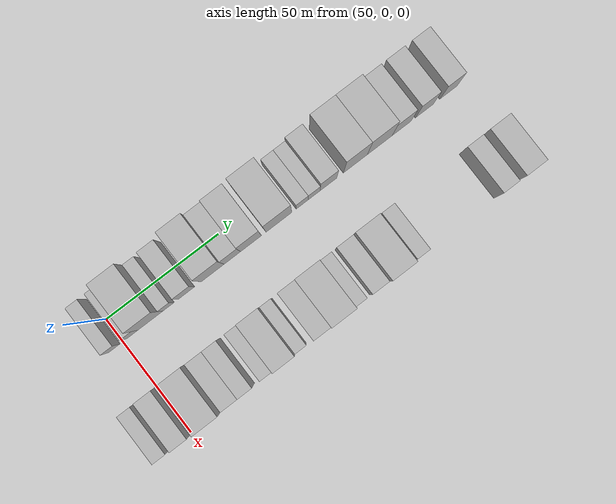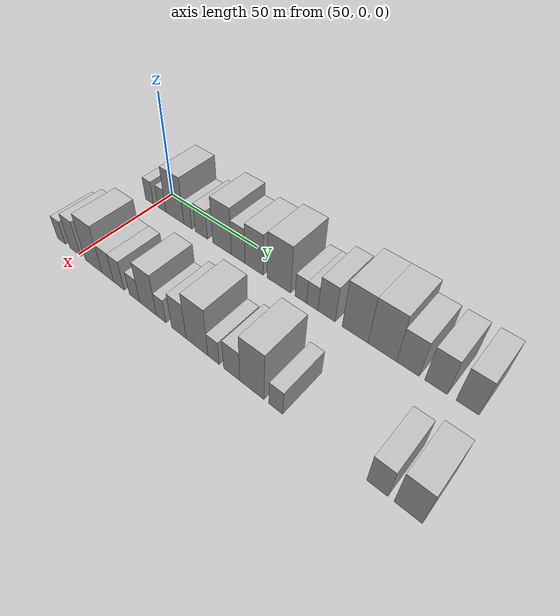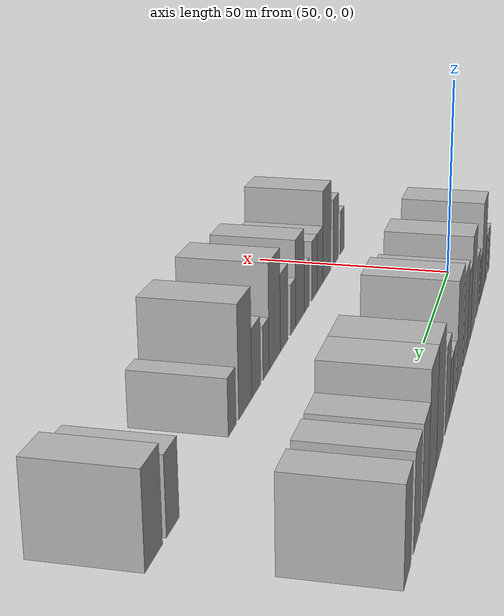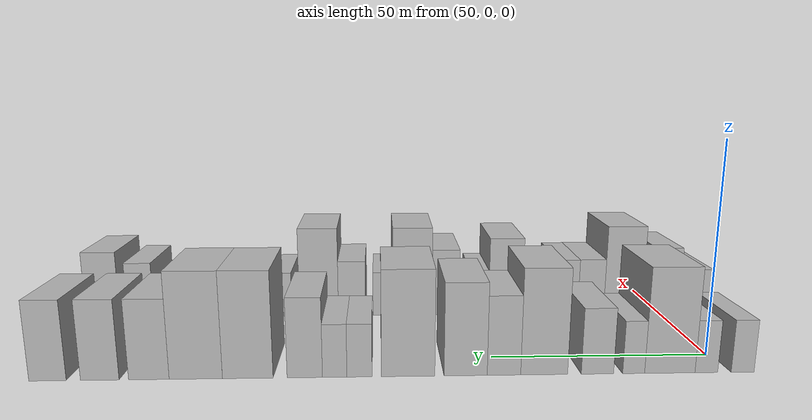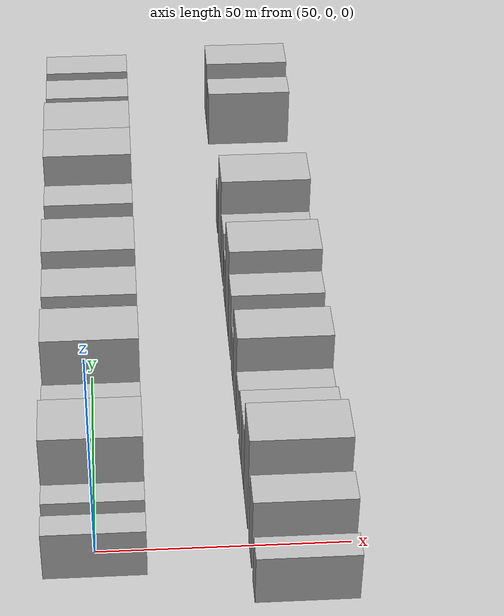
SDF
<sdf version="1.6">
 <world name="default">
  <model name="building_35">
   <static>1</static>
   <pose>50.0000 -3.7508 0 0.000000 0.000000 0.000000</pose>
   <link name="link">
    <pose>0 0 6.00 0 0 0</pose>
    <collision name="collision"><geometry><box><size>20.0000 5.0844 12.0000</size></box></geometry></collision>
    <visual name="visual">
     <cast_shadows>0</cast_shadows>
     <geometry><box><size>20.0000 5.0844 12.0000</size></box></geometry>
     <material>
      <script>
       <uri>model://HANNAS_wall/materials/scripts</uri>
       <uri>model://HANNAS_wall/materials/textures</uri>
       <name>vrc/HANNAS_wall</name>
      </script>
     </material>
    </visual>
   </link>
  </model>
  <model name="building_36">
   <static>1</static>
   <pose>50.0000 4.3104 0 0.000000 0.000000 0.000000</pose>
   <link name="link">
    <pose>0 0 6.00 0 0 0</pose>
    <collision name="collision"><geometry><box><size>20.0000 5.0379 12.0000</size></box></geometry></collision>
    <visual name="visual">
     <cast_shadows>0</cast_shadows>
     <geometry><box><size>20.0000 5.0379 12.0000</size></box></geometry>
     <material>
      <script>
       <uri>model://HANNAS_wall/materials/scripts</uri>
       <uri>model://HANNAS_wall/materials/textures</uri>
       <name>vrc/HANNAS_wall</name>
      </script>
     </material>
    </visual>
   </link>
  </model>
  <model name="building_37">
   <static>1</static>
   <pose>50.0000 12.4003 0 0.000000 0.000000 0.000000</pose>
   <link name="link">
    <pose>0 0 12.00 0 0 0</pose>
    <collision name="collision"><geometry><box><size>20.0000 11.1420 24.0000</size></box></geometry></collision>
    <visual name="visual">
     <cast_shadows>0</cast_shadows>
     <geometry><box><size>20.0000 11.1420 24.0000</size></box></geometry>
     <material>
      <script>
       <uri>model://HANNAS_wall/materials/scripts</uri>
       <uri>model://HANNAS_wall/materials/textures</uri>
       <name>vrc/HANNAS_wall</name>
      </script>
     </material>
    </visual>
   </link>
  </model>
  <model name="building_38">
   <static>1</static>
   <pose>50.0000 20.3887 0 0.000000 0.000000 0.000000</pose>
   <link name="link">
    <pose>0 0 6.00 0 0 0</pose>
    <collision name="collision"><geometry><box><size>20.0000 4.8348 12.0000</size></box></geometry></collision>
    <visual name="visual">
     <cast_shadows>0</cast_shadows>
     <geometry><box><size>20.0000 4.8348 12.0000</size></box></geometry>
     <material>
      <script>
       <uri>model://HANNAS_wall/materials/scripts</uri>
       <uri>model://HANNAS_wall/materials/textures</uri>
       <name>vrc/HANNAS_wall</name>
      </script>
     </material>
    </visual>
   </link>
  </model>
  <model name="building_39">
   <static>1</static>
   <pose>50.0000 28.3555 0 0.000000 0.000000 0.000000</pose>
   <link name="link">
    <pose>0 0 7.50 0 0 0</pose>
    <collision name="collision"><geometry><box><size>20.0000 7.0989 15.0000</size></box></geometry></collision>
    <visual name="visual">
     <cast_shadows>0</cast_shadows>
     <geometry><box><size>20.0000 7.0989 15.0000</size></box></geometry>
     <material>
      <script>
       <uri>model://HANNAS_wall/materials/scripts</uri>
       <uri>model://HANNAS_wall/materials/textures</uri>
       <name>vrc/HANNAS_wall</name>
      </script>
     </material>
    </visual>
   </link>
  </model>
  <model name="building_40">
   <static>1</static>
   <pose>50.0000 40.0406 0 0.000000 0.000000 0.000000</pose>
   <link name="link">
    <pose>0 0 12.00 0 0 0</pose>
    <collision name="collision"><geometry><box><size>20.0000 10.2713 24.0000</size></box></geometry></collision>
    <visual name="visual">
     <cast_shadows>0</cast_shadows>
     <geometry><box><size>20.0000 10.2713 24.0000</size></box></geometry>
     <material>
      <script>
       <uri>model://HANNAS_wall/materials/scripts</uri>
       <uri>model://HANNAS_wall/materials/textures</uri>
       <name>vrc/HANNAS_wall</name>
      </script>
     </material>
    </visual>
   </link>
  </model>
  <model name="building_41">
   <static>1</static>
   <pose>50.0000 48.8296 0 0.000000 0.000000 0.000000</pose>
   <link name="link">
    <pose>0 0 9.00 0 0 0</pose>
    <collision name="collision"><geometry><box><size>20.0000 7.3065 18.0000</size></box></geometry></collision>
    <visual name="visual">
     <cast_shadows>0</cast_shadows>
     <geometry><box><size>20.0000 7.3065 18.0000</size></box></geometry>
     <material>
      <script>
       <uri>model://HANNAS_wall/materials/scripts</uri>
       <uri>model://HANNAS_wall/materials/textures</uri>
       <name>vrc/HANNAS_wall</name>
      </script>
     </material>
    </visual>
   </link>
  </model>
  <model name="building_42">
   <static>1</static>
   <pose>50.0000 57.1725 0 0.000000 0.000000 0.000000</pose>
   <link name="link">
    <pose>0 0 10.50 0 0 0</pose>
    <collision name="collision"><geometry><box><size>20.0000 9.3794 21.0000</size></box></geometry></collision>
    <visual name="visual">
     <cast_shadows>0</cast_shadows>
     <geometry><box><size>20.0000 9.3794 21.0000</size></box></geometry>
     <material>
      <script>
       <uri>model://HANNAS_wall/materials/scripts</uri>
       <uri>model://HANNAS_wall/materials/textures</uri>
       <name>vrc/HANNAS_wall</name>
      </script>
     </material>
    </visual>
   </link>
  </model>
  <model name="building_43">
   <static>1</static>
   <pose>50.0000 69.6522 0 0.000000 0.000000 0.000000</pose>
   <link name="link">
    <pose>0 0 12.00 0 0 0</pose>
    <collision name="collision"><geometry><box><size>20.0000 11.5799 24.0000</size></box></geometry></collision>
    <visual name="visual">
     <cast_shadows>0</cast_shadows>
     <geometry><box><size>20.0000 11.5799 24.0000</size></box></geometry>
     <material>
      <script>
       <uri>model://HANNAS_wall/materials/scripts</uri>
       <uri>model://HANNAS_wall/materials/textures</uri>
       <name>vrc/HANNAS_wall</name>
      </script>
     </material>
    </visual>
   </link>
  </model>
  <model name="building_44">
   <static>1</static>
   <pose>50.0000 80.1559 0 0.000000 0.000000 0.000000</pose>
   <link name="link">
    <pose>0 0 6.00 0 0 0</pose>
    <collision name="collision"><geometry><box><size>20.0000 5.4277 12.0000</size></box></geometry></collision>
    <visual name="visual">
     <cast_shadows>0</cast_shadows>
     <geometry><box><size>20.0000 5.4277 12.0000</size></box></geometry>
     <material>
      <script>
       <uri>model://HANNAS_wall/materials/scripts</uri>
       <uri>model://HANNAS_wall/materials/textures</uri>
       <name>vrc/HANNAS_wall</name>
      </script>
     </material>
    </visual>
   </link>
  </model>
  <model name="building_45">
   <static>1</static>
   <pose>50.0000 85.5039 0 0.000000 0.000000 0.000000</pose>
   <link name="link">
    <pose>0 0 6.00 0 0 0</pose>
    <collision name="collision"><geometry><box><size>20.0000 5.2683 12.0000</size></box></geometry></collision>
    <visual name="visual">
     <cast_shadows>0</cast_shadows>
     <geometry><box><size>20.0000 5.2683 12.0000</size></box></geometry>
     <material>
      <script>
       <uri>model://HANNAS_wall/materials/scripts</uri>
       <uri>model://HANNAS_wall/materials/textures</uri>
       <name>vrc/HANNAS_wall</name>
      </script>
     </material>
    </visual>
   </link>
  </model>
  <model name="building_46">
   <static>1</static>
   <pose>50.0000 91.9332 0 0.000000 0.000000 0.000000</pose>
   <link name="link">
    <pose>0 0 9.00 0 0 0</pose>
    <collision name="collision"><geometry><box><size>20.0000 7.5904 18.0000</size></box></geometry></collision>
    <visual name="visual">
     <cast_shadows>0</cast_shadows>
     <geometry><box><size>20.0000 7.5904 18.0000</size></box></geometry>
     <material>
      <script>
       <uri>model://HANNAS_wall/materials/scripts</uri>
       <uri>model://HANNAS_wall/materials/textures</uri>
       <name>vrc/HANNAS_wall</name>
      </script>
     </material>
    </visual>
   </link>
  </model>
  <model name="building_47">
   <static>1</static>
   <pose>50.0000 104.1379 0 0.000000 0.000000 0.000000</pose>
   <link name="link">
    <pose>0 0 12.00 0 0 0</pose>
    <collision name="collision"><geometry><box><size>20.0000 10.8189 24.0000</size></box></geometry></collision>
    <visual name="visual">
     <cast_shadows>0</cast_shadows>
     <geometry><box><size>20.0000 10.8189 24.0000</size></box></geometry>
     <material>
      <script>
       <uri>model://HANNAS_wall/materials/scripts</uri>
       <uri>model://HANNAS_wall/materials/textures</uri>
       <name>vrc/HANNAS_wall</name>
      </script>
     </material>
    </visual>
   </link>
  </model>
  <model name="building_48">
   <static>1</static>
   <pose>50.0000 115.2195 0 0.000000 0.000000 0.000000</pose>
   <link name="link">
    <pose>0 0 12.00 0 0 0</pose>
    <collision name="collision"><geometry><box><size>20.0000 11.3442 24.0000</size></box></geometry></collision>
    <visual name="visual">
     <cast_shadows>0</cast_shadows>
     <geometry><box><size>20.0000 11.3442 24.0000</size></box></geometry>
     <material>
      <script>
       <uri>model://HANNAS_wall/materials/scripts</uri>
       <uri>model://HANNAS_wall/materials/textures</uri>
       <name>vrc/HANNAS_wall</name>
      </script>
     </material>
    </visual>
   </link>
  </model>
  <model name="building_49">
   <static>1</static>
   <pose>50.0000 125.1964 0 0.000000 0.000000 0.000000</pose>
   <link name="link">
    <pose>0 0 9.00 0 0 0</pose>
    <collision name="collision"><geometry><box><size>20.0000 8.6096 18.0000</size></box></geometry></collision>
    <visual name="visual">
     <cast_shadows>0</cast_shadows>
     <geometry><box><size>20.0000 8.6096 18.0000</size></box></geometry>
     <material>
      <script>
       <uri>model://HANNAS_wall/materials/scripts</uri>
       <uri>model://HANNAS_wall/materials/textures</uri>
       <name>vrc/HANNAS_wall</name>
      </script>
     </material>
    </visual>
   </link>
  </model>
  <model name="building_50">
   <static>1</static>
   <pose>50.0000 135.5839 0 0.000000 0.000000 0.000000</pose>
   <link name="link">
    <pose>0 0 9.00 0 0 0</pose>
    <collision name="collision"><geometry><box><size>20.0000 8.1655 18.0000</size></box></geometry></collision>
    <visual name="visual">
     <cast_shadows>0</cast_shadows>
     <geometry><box><size>20.0000 8.1655 18.0000</size></box></geometry>
     <material>
      <script>
       <uri>model://HANNAS_wall/materials/scripts</uri>
       <uri>model://HANNAS_wall/materials/textures</uri>
       <name>vrc/HANNAS_wall</name>
      </script>
     </material>
    </visual>
   </link>
  </model>
  <model name="building_51">
   <static>1</static>
   <pose>50.0000 146.5986 0 0.000000 0.000000 0.000000</pose>
   <link name="link">
    <pose>0 0 9.00 0 0 0</pose>
    <collision name="collision"><geometry><box><size>20.0000 7.8638 18.0000</size></box></geometry></collision>
    <visual name="visual">
     <cast_shadows>0</cast_shadows>
     <geometry><box><size>20.0000 7.8638 18.0000</size></box></geometry>
     <material>
      <script>
       <uri>model://HANNAS_wall/materials/scripts</uri>
       <uri>model://HANNAS_wall/materials/textures</uri>
       <name>vrc/HANNAS_wall</name>
      </script>
     </material>
    </visual>
   </link>
  </model>
  <model name="building_101">
   <static>1</static>
   <pose>90.0000 -11.5696 0 0.000000 0.000000 0.000000</pose>
   <link name="link">
    <pose>0 0 6.00 0 0 0</pose>
    <collision name="collision"><geometry><box><size>20.0000 5.5529 12.0000</size></box></geometry></collision>
    <visual name="visual">
     <cast_shadows>0</cast_shadows>
     <geometry><box><size>20.0000 5.5529 12.0000</size></box></geometry>
     <material>
      <script>
       <uri>model://HANNAS_wall/materials/scripts</uri>
       <uri>model://HANNAS_wall/materials/textures</uri>
       <name>vrc/HANNAS_wall</name>
      </script>
     </material>
    </visual>
   </link>
  </model>
  <model name="building_102">
   <static>1</static>
   <pose>90.0000 -2.1830 0 0.000000 0.000000 0.000000</pose>
   <link name="link">
    <pose>0 0 9.00 0 0 0</pose>
    <collision name="collision"><geometry><box><size>20.0000 7.2203 18.0000</size></box></geometry></collision>
    <visual name="visual">
     <cast_shadows>0</cast_shadows>
     <geometry><box><size>20.0000 7.2203 18.0000</size></box></geometry>
     <material>
      <script>
       <uri>model://HANNAS_wall/materials/scripts</uri>
       <uri>model://HANNAS_wall/materials/textures</uri>
       <name>vrc/HANNAS_wall</name>
      </script>
     </material>
    </visual>
   </link>
  </model>
  <model name="building_103">
   <static>1</static>
   <pose>90.0000 9.6742 0 0.000000 0.000000 0.000000</pose>
   <link name="link">
    <pose>0 0 12.00 0 0 0</pose>
    <collision name="collision"><geometry><box><size>20.0000 10.4942 24.0000</size></box></geometry></collision>
    <visual name="visual">
     <cast_shadows>0</cast_shadows>
     <geometry><box><size>20.0000 10.4942 24.0000</size></box></geometry>
     <material>
      <script>
       <uri>model://HANNAS_wall/materials/scripts</uri>
       <uri>model://HANNAS_wall/materials/textures</uri>
       <name>vrc/HANNAS_wall</name>
      </script>
     </material>
    </visual>
   </link>
  </model>
  <model name="building_104">
   <static>1</static>
   <pose>90.0000 18.4553 0 0.000000 0.000000 0.000000</pose>
   <link name="link">
    <pose>0 0 7.50 0 0 0</pose>
    <collision name="collision"><geometry><box><size>20.0000 7.0680 15.0000</size></box></geometry></collision>
    <visual name="visual">
     <cast_shadows>0</cast_shadows>
     <geometry><box><size>20.0000 7.0680 15.0000</size></box></geometry>
     <material>
      <script>
       <uri>model://HANNAS_wall/materials/scripts</uri>
       <uri>model://HANNAS_wall/materials/textures</uri>
       <name>vrc/HANNAS_wall</name>
      </script>
     </material>
    </visual>
   </link>
  </model>
  <model name="building_105">
   <static>1</static>
   <pose>90.0000 25.0851 0 0.000000 0.000000 0.000000</pose>
   <link name="link">
    <pose>0 0 7.50 0 0 0</pose>
    <collision name="collision"><geometry><box><size>20.0000 6.1916 15.0000</size></box></geometry></collision>
    <visual name="visual">
     <cast_shadows>0</cast_shadows>
     <geometry><box><size>20.0000 6.1916 15.0000</size></box></geometry>
     <material>
      <script>
       <uri>model://HANNAS_wall/materials/scripts</uri>
       <uri>model://HANNAS_wall/materials/textures</uri>
       <name>vrc/HANNAS_wall</name>
      </script>
     </material>
    </visual>
   </link>
  </model>
  <model name="building_106">
   <static>1</static>
   <pose>90.0000 34.1419 0 0.000000 0.000000 0.000000</pose>
   <link name="link">
    <pose>0 0 6.00 0 0 0</pose>
    <collision name="collision"><geometry><box><size>20.0000 5.9220 12.0000</size></box></geometry></collision>
    <visual name="visual">
     <cast_shadows>0</cast_shadows>
     <geometry><box><size>20.0000 5.9220 12.0000</size></box></geometry>
     <material>
      <script>
       <uri>model://HANNAS_wall/materials/scripts</uri>
       <uri>model://HANNAS_wall/materials/textures</uri>
       <name>vrc/HANNAS_wall</name>
      </script>
     </material>
    </visual>
   </link>
  </model>
  <model name="building_107">
   <static>1</static>
   <pose>90.0000 41.6938 0 0.000000 0.000000 0.000000</pose>
   <link name="link">
    <pose>0 0 10.50 0 0 0</pose>
    <collision name="collision"><geometry><box><size>20.0000 9.1819 21.0000</size></box></geometry></collision>
    <visual name="visual">
     <cast_shadows>0</cast_shadows>
     <geometry><box><size>20.0000 9.1819 21.0000</size></box></geometry>
     <material>
      <script>
       <uri>model://HANNAS_wall/materials/scripts</uri>
       <uri>model://HANNAS_wall/materials/textures</uri>
       <name>vrc/HANNAS_wall</name>
      </script>
     </material>
    </visual>
   </link>
  </model>
  <model name="building_108">
   <static>1</static>
   <pose>90.0000 48.7648 0 0.000000 0.000000 0.000000</pose>
   <link name="link">
    <pose>0 0 6.00 0 0 0</pose>
    <collision name="collision"><geometry><box><size>20.0000 4.9601 12.0000</size></box></geometry></collision>
    <visual name="visual">
     <cast_shadows>0</cast_shadows>
     <geometry><box><size>20.0000 4.9601 12.0000</size></box></geometry>
     <material>
      <script>
       <uri>model://HANNAS_wall/materials/scripts</uri>
       <uri>model://HANNAS_wall/materials/textures</uri>
       <name>vrc/HANNAS_wall</name>
      </script>
     </material>
    </visual>
   </link>
  </model>
  <model name="building_109">
   <static>1</static>
   <pose>90.0000 57.9348 0 0.000000 0.000000 0.000000</pose>
   <link name="link">
    <pose>0 0 9.00 0 0 0</pose>
    <collision name="collision"><geometry><box><size>20.0000 7.3800 18.0000</size></box></geometry></collision>
    <visual name="visual">
     <cast_shadows>0</cast_shadows>
     <geometry><box><size>20.0000 7.3800 18.0000</size></box></geometry>
     <material>
      <script>
       <uri>model://HANNAS_wall/materials/scripts</uri>
       <uri>model://HANNAS_wall/materials/textures</uri>
       <name>vrc/HANNAS_wall</name>
      </script>
     </material>
    </visual>
   </link>
  </model>
  <model name="building_110">
   <static>1</static>
   <pose>90.0000 66.8921 0 0.000000 0.000000 0.000000</pose>
   <link name="link">
    <pose>0 0 12.00 0 0 0</pose>
    <collision name="collision"><geometry><box><size>20.0000 10.5347 24.0000</size></box></geometry></collision>
    <visual name="visual">
     <cast_shadows>0</cast_shadows>
     <geometry><box><size>20.0000 10.5347 24.0000</size></box></geometry>
     <material>
      <script>
       <uri>model://HANNAS_wall/materials/scripts</uri>
       <uri>model://HANNAS_wall/materials/textures</uri>
       <name>vrc/HANNAS_wall</name>
      </script>
     </material>
    </visual>
   </link>
  </model>
  <model name="building_111">
   <static>1</static>
   <pose>90.0000 74.8232 0 0.000000 0.000000 0.000000</pose>
   <link name="link">
    <pose>0 0 6.00 0 0 0</pose>
    <collision name="collision"><geometry><box><size>20.0000 5.3274 12.0000</size></box></geometry></collision>
    <visual name="visual">
     <cast_shadows>0</cast_shadows>
     <geometry><box><size>20.0000 5.3274 12.0000</size></box></geometry>
     <material>
      <script>
       <uri>model://HANNAS_wall/materials/scripts</uri>
       <uri>model://HANNAS_wall/materials/textures</uri>
       <name>vrc/HANNAS_wall</name>
      </script>
     </material>
    </visual>
   </link>
  </model>
  <model name="building_112">
   <static>1</static>
   <pose>90.0000 83.1417 0 0.000000 0.000000 0.000000</pose>
   <link name="link">
    <pose>0 0 7.50 0 0 0</pose>
    <collision name="collision"><geometry><box><size>20.0000 7.3096 15.0000</size></box></geometry></collision>
    <visual name="visual">
     <cast_shadows>0</cast_shadows>
     <geometry><box><size>20.0000 7.3096 15.0000</size></box></geometry>
     <material>
      <script>
       <uri>model://HANNAS_wall/materials/scripts</uri>
       <uri>model://HANNAS_wall/materials/textures</uri>
       <name>vrc/HANNAS_wall</name>
      </script>
     </material>
    </visual>
   </link>
  </model>
  <model name="building_113">
   <static>1</static>
   <pose>90.0000 91.9990 0 0.000000 0.000000 0.000000</pose>
   <link name="link">
    <pose>0 0 12.00 0 0 0</pose>
    <collision name="collision"><geometry><box><size>20.0000 10.4049 24.0000</size></box></geometry></collision>
    <visual name="visual">
     <cast_shadows>0</cast_shadows>
     <geometry><box><size>20.0000 10.4049 24.0000</size></box></geometry>
     <material>
      <script>
       <uri>model://HANNAS_wall/materials/scripts</uri>
       <uri>model://HANNAS_wall/materials/textures</uri>
       <name>vrc/HANNAS_wall</name>
      </script>
     </material>
    </visual>
   </link>
  </model>
  <model name="building_114">
   <static>1</static>
   <pose>90.0000 102.0358 0 0.000000 0.000000 0.000000</pose>
   <link name="link">
    <pose>0 0 6.00 0 0 0</pose>
    <collision name="collision"><geometry><box><size>20.0000 5.6688 12.0000</size></box></geometry></collision>
    <visual name="visual">
     <cast_shadows>0</cast_shadows>
     <geometry><box><size>20.0000 5.6688 12.0000</size></box></geometry>
     <material>
      <script>
       <uri>model://HANNAS_wall/materials/scripts</uri>
       <uri>model://HANNAS_wall/materials/textures</uri>
       <name>vrc/HANNAS_wall</name>
      </script>
     </material>
    </visual>
   </link>
  </model>
  <model name="building_115">
   <static>1</static>
   <pose>90.0000 139.3929 0 0.000000 0.000000 0.000000</pose>
   <link name="link">
    <pose>0 0 7.50 0 0 0</pose>
    <collision name="collision"><geometry><box><size>20.0000 7.0152 15.0000</size></box></geometry></collision>
    <visual name="visual">
     <cast_shadows>0</cast_shadows>
     <geometry><box><size>20.0000 7.0152 15.0000</size></box></geometry>
     <material>
      <script>
       <uri>model://HANNAS_wall/materials/scripts</uri>
       <uri>model://HANNAS_wall/materials/textures</uri>
       <name>vrc/HANNAS_wall</name>
      </script>
     </material>
    </visual>
   </link>
  </model>
  <model name="building_116">
   <static>1</static>
   <pose>90.0000 149.3478 0 0.000000 0.000000 0.000000</pose>
   <link name="link">
    <pose>0 0 9.00 0 0 0</pose>
    <collision name="collision"><geometry><box><size>20.0000 8.8946 18.0000</size></box></geometry></collision>
    <visual name="visual">
     <cast_shadows>0</cast_shadows>
     <geometry><box><size>20.0000 8.8946 18.0000</size></box></geometry>
     <material>
      <script>
       <uri>model://HANNAS_wall/materials/scripts</uri>
       <uri>model://HANNAS_wall/materials/textures</uri>
       <name>vrc/HANNAS_wall</name>
      </script>
     </material>
    </visual>
   </link>
  </model>
 </world>
</sdf>
